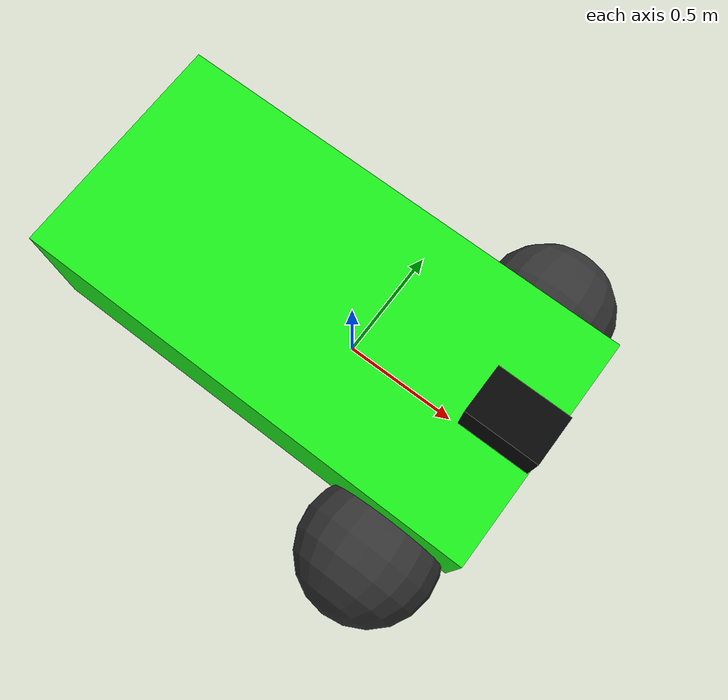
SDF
<?xml version="1.0" ?>
<sdf version="1.8">
    <model name='vehicle'>
      <link name='chassis'>
        <pose>-0.151427 -0 0.175 0 -0 0</pose>
        <inertial>
          <mass>1.14395</mass>
          <inertia>
            <ixx>0.126164</ixx>
            <ixy>0</ixy>
            <ixz>0</ixz>
            <iyy>0.416519</iyy>
            <iyz>0</iyz>
            <izz>0.481014</izz>
          </inertia>
        </inertial>
        <visual name="chassis_visual">
          <geometry>
            <box>
              <size>2.01142 1 0.568726</size>
            </box>
          </geometry>
          <material>
            <ambient>0.05 0.5 0.05 1</ambient>
            <diffuse>0.1 0.9 0.1 1</diffuse>
            <specular>0.5 0.5 0.5 1</specular>
          </material>
        </visual>
        <collision name='collision_chassis'>
          <geometry>
            <box>
              <size>2.01142 1 0.568726</size>
            </box>
          </geometry>
        </collision>

        <!-- RGB-D camera mounted on the chassis -->
        <sensor name="rgbd" type="rgbd_camera">
          <!-- x forward, raise a bit -->
          <pose>0.85 0 0.40 0 0 0</pose>
          <always_on>true</always_on>
          <update_rate>20</update_rate>
          <visualize>true</visualize>

          <!-- Base topic; Ign will publish /camera/image and /camera/depth_image -->
          <topic>/camera</topic>

          <camera>
            <horizontal_fov>1.047</horizontal_fov> <!-- ~60 deg -->
            <image>
              <width>640</width>
              <height>480</height>
              <format>R8G8B8</format>
            </image>
            <clip>
              <near>0.1</near>
              <far>15.0</far>
            </clip>
            <noise>
              <type>gaussian</type>
              <mean>0.0</mean>
              <stddev>0.007</stddev>
            </noise>
          </camera>
        </sensor>

        <!-- camera visual box -->
        <visual name="camera_box_visual">
          <pose>0.85 0 0.40 0 0 0</pose>
          <geometry><box><size>0.30 0.20 0.20</size></box></geometry>
          <material>
            <ambient>0.02 0.02 0.02 1</ambient>
            <diffuse>0.02 0.02 0.02 1</diffuse>
            <specular>0.1 0.1 0.1 1</specular>
          </material>
        </visual>
      </link>

      <link name='left_wheel'>
        <pose>0.554283 0.625029 -0.025 -1.5707 0 0</pose>
        <inertial>
          <mass>2</mass>
          <inertia>
            <ixx>0.145833</ixx>
            <ixy>0</ixy>
            <ixz>0</ixz>
            <iyy>0.145833</iyy>
            <iyz>0</iyz>
            <izz>0.125</izz>
          </inertia>
        </inertial>
        <visual name='visual_left_wheel'>
          <geometry>
            <sphere>
              <radius>0.3</radius>
            </sphere>
          </geometry>
          <material>
            <ambient>0.2 0.2 0.2 1</ambient>
            <diffuse>0.2 0.2 0.2 1</diffuse>
            <specular>0.2 0.2 0.2 1</specular>
          </material>
        </visual>
        <collision name='collision_left_wheel'>
          <geometry>
            <sphere>
              <radius>0.3</radius>
            </sphere>
          </geometry>
          <surface>
            <friction>
              <ode>
                <mu>1.0</mu>   <mu2>1.0</mu2>  <slip1>0.0</slip1> <slip2>0.0</slip2> </ode>
            </friction>
            <contact>
              <ode>
                <min_depth>0.001</min_depth>
                <kp>1e8</kp>
              </ode>
            </contact>
          </surface>
        </collision>
      </link>

      <link name='right_wheel'>
        <pose>0.554282 -0.625029 -0.025 -1.5707 0 0</pose>
        <inertial>
          <mass>2</mass>
          <inertia>
            <ixx>0.145833</ixx>
            <ixy>0</ixy>
            <ixz>0</ixz>
            <iyy>0.145833</iyy>
            <iyz>0</iyz>
            <izz>0.125</izz>
          </inertia>
        </inertial>
        <visual name='visual_right_wheel'>
          <geometry>
            <sphere>
              <radius>0.3</radius>
            </sphere>
          </geometry>
          <material>
            <ambient>0.2 0.2 0.2 1</ambient>
            <diffuse>0.2 0.2 0.2 1</diffuse>
            <specular>0.2 0.2 0.2 1</specular>
          </material>
        </visual>
        <collision name='collision_right_wheel'>
          <geometry>
            <sphere>
              <radius>0.3</radius>
            </sphere>
          </geometry>
          <surface>
            <friction>
              <ode>
                <mu>1.0</mu>   <mu2>1.0</mu2>  <slip1>0.0</slip1> <slip2>0.0</slip2> </ode>
            </friction>
            <contact>
              <ode>
                <min_depth>0.001</min_depth>
                <kp>1e8</kp>
              </ode>
            </contact>
          </surface>
        </collision>
      </link>

      <link name='caster'>
        <pose>-0.957138 -0 -0.125 0 -0 0</pose>
        <inertial>
          <mass>1</mass>
          <inertia>
            <ixx>0.1</ixx>
            <ixy>0</ixy>
            <ixz>0</ixz>
            <iyy>0.1</iyy>
            <iyz>0</iyz>
            <izz>0.1</izz>
          </inertia>
        </inertial>
        <visual name='visual_caster'>
          <geometry>
            <sphere>
              <radius>0.2</radius>
            </sphere>
          </geometry>
          <material>
            <ambient>0.2 0.2 0.2 1</ambient>
            <diffuse>0.2 0.2 0.2 1</diffuse>
            <specular>0.2 0.2 0.2 1</specular>
          </material>
        </visual>
        <collision name='collision_caster'>
          <geometry>
            <sphere>
              <radius>0.2</radius>
            </sphere>
          </geometry>
        </collision>
      </link>

      <link name="camera_link_green">
        <pose>0.3 0 0.4 0 0 0</pose>
        <inertial><mass>0.1</mass></inertial>
        <!-- No duplicate sensor here; the chassis rgbd sensor is the single source -->
      </link>

      <joint name='left_wheel_joint' type='revolute'>
        <parent>chassis</parent>
        <child>left_wheel</child>
        <axis>
          <xyz>0 0 1</xyz>
          <limit>
            <lower>-1.79769e+308</lower>
            <upper>1.79769e+308</upper>
          </limit>
        </axis>
      </joint>

      <joint name='right_wheel_joint' type='revolute'>
        <parent>chassis</parent>
        <child>right_wheel</child>
        <axis>
          <xyz>0 0 1</xyz>
          <limit>
            <lower>-1.79769e+308</lower>
            <upper>1.79769e+308</upper>
          </limit>
        </axis>
      </joint>

      <joint name='caster_wheel' type='ball'>
        <parent>chassis</parent>
        <child>caster</child>
      </joint>

      <plugin
        filename="ignition-gazebo-diff-drive-system"
        name="ignition::gazebo::systems::DiffDrive">
        <odom_noise_xyz>0.001 0.001 0.001</odom_noise_xyz>
        <odom_noise_rpy>0.001 0.001 0.001</odom_noise_rpy>
        <left_joint>left_wheel_joint</left_joint>
        <right_joint>right_wheel_joint</right_joint>
        <wheel_separation>1.25</wheel_separation>
        <wheel_radius>0.3</wheel_radius>
        <odom_publish_frequency>20</odom_publish_frequency>
        <max_linear_acceleration>1</max_linear_acceleration>
        <min_linear_acceleration>-1</min_linear_acceleration>
        <max_angular_acceleration>2</max_angular_acceleration>
        <min_angular_acceleration>-2</min_angular_acceleration>
        <max_linear_velocity>0.5</max_linear_velocity>
        <min_linear_velocity>-0.5</min_linear_velocity>
        <max_angular_velocity>1</max_angular_velocity>
        <min_angular_velocity>-1</min_angular_velocity>
      </plugin>

      <plugin filename="libignition-gazebo-pose-publisher-system.so"
              name="ignition::gazebo::systems::PosePublisher">
        <publish_link_pose>true</publish_link_pose>
        <publish_sensor_pose>true</publish_sensor_pose>
        <publish_collision_pose>false</publish_collision_pose>
        <publish_visual_pose>false</publish_visual_pose>
        <publish_nested_model_pose>false</publish_nested_model_pose>
        <use_pose_vector_msg>true</use_pose_vector_msg>
        <static_publisher>true</static_publisher>
        <update_frequency>20.0</update_frequency>
      </plugin>
    </model>
</sdf>
